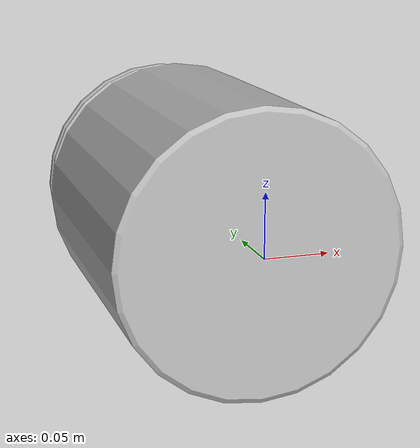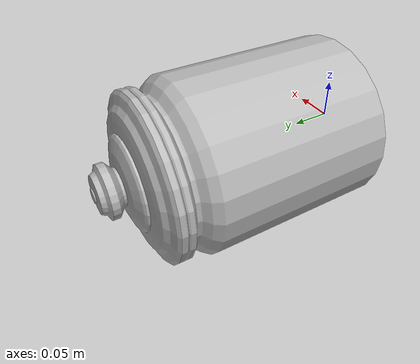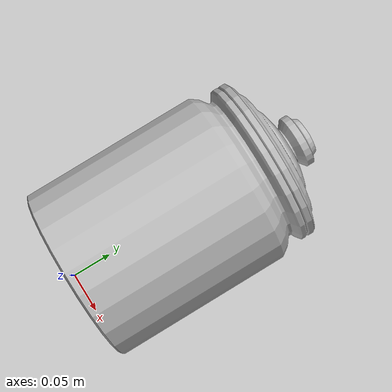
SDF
<?xml version="1.0" ?>
<sdf version="1.4">
  <model name="shelf2_jar2_2">
    <link name="body">
      <pose>0 0 0 0 0 0</pose>
      <inertial>
        <pose>   0.001715   0.143882   0.000298 0 0 0</pose>
        <mass>0.5</mass>
        <inertia>
          <ixx>0.01</ixx>
          <ixy>0</ixy>
          <ixz>0</ixz>
          <iyy>0.01</iyy>
          <iyz>0</iyz>
          <izz>0.01</izz>
        </inertia>
      </inertial>
      <collision name="collision">
        <geometry>
          <mesh>
            <uri>model://bookshelf/shelf2_items/jar2_2/jar2_2.dae</uri>
          </mesh>
        </geometry>
      </collision>
      <visual name="visual">
        <geometry>
          <mesh>
            <uri>model://bookshelf/shelf2_items/jar2_2/jar2_2.dae</uri>
          </mesh>
        </geometry>
      </visual>
    </link>
  </model>
</sdf>
